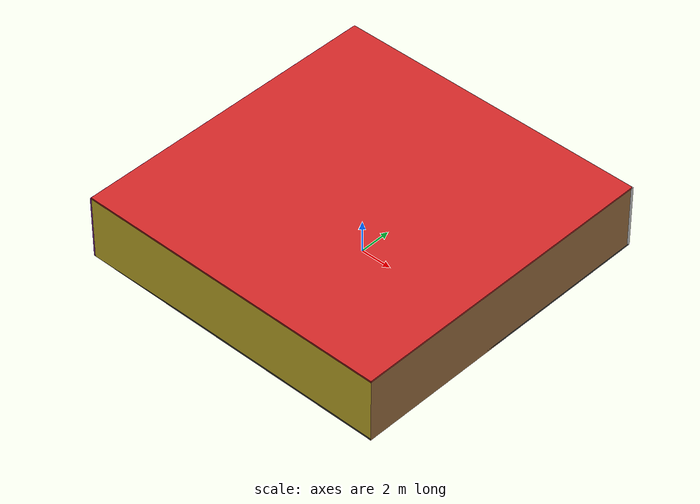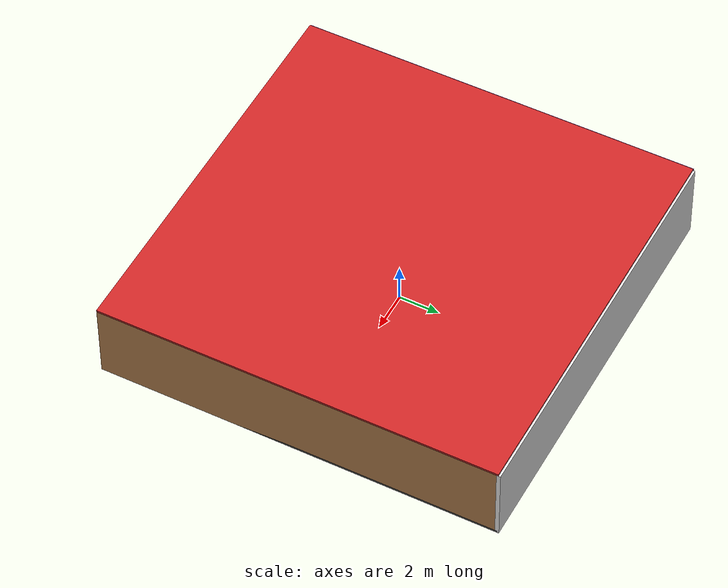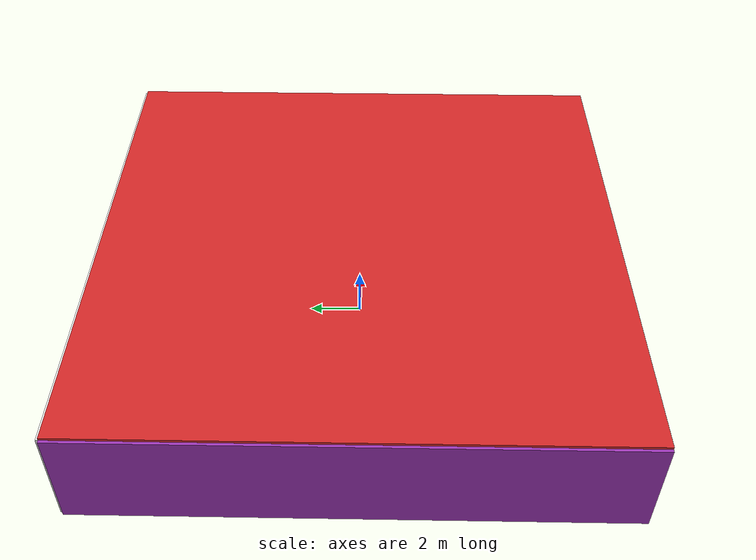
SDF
<sdf version="1.4">
 <world name="default">
  <physics type="ode">
   <max_step_size>0.001</max_step_size>
   <real_time_factor>1</real_time_factor>
   <real_time_update_rate>1000</real_time_update_rate>
   <gravity>0 0 -9.8</gravity>
  </physics>
  <scene><ambient>0.4 0.4 0.4 1</ambient><background>0.7 0.7 0.7 1</background><shadows>1</shadows></scene>
  <model name="Surrounding">
   <static>1</static>
   <link name="Ceiling">
    <collision name="Ceiling_Collision"><geometry><box><size>20 20 0.1</size></box></geometry></collision>
    <visual name="Ceiling_Visual">
     <geometry><box><size>20 20 0.1</size></box></geometry>
     <material>
      <script><uri>file://media/materials/scripts/gazebo.material</uri><name>Gazebo/RedGlow</name></script>
     </material>
    </visual>
    <pose>0 0 4.05 0 0 0</pose>
   </link>
   <link name="Wall_South">
    <collision name="Wall_South_Collision">
     <geometry><box><size>20 0 4</size></box></geometry>
     <pose>0 0 2 0 -0 0</pose>
    </collision>
    <visual name="Wall_South_Visual">
     <pose>0 0 2 0 -0 0</pose>
     <geometry><box><size>20 0 4</size></box></geometry>
     <material>
      <script><uri>file://media/materials/scripts/gazebo.material</uri><name>Gazebo/ZincYellow</name></script>
     </material>
    </visual>
    <velocity_decay><linear>0</linear><angular>0</angular></velocity_decay>
    <pose>0 -10 0 0 -0 0</pose>
   </link>
   <link name="Wall_East">
    <collision name="Wall_21_Collision">
     <geometry><box><size>20 0 4</size></box></geometry>
     <pose>0 0 2 0 -0 0</pose>
    </collision>
    <visual name="Wall_21_Visual">
     <pose>0 0 2 0 -0 0</pose>
     <geometry><box><size>20 0 4</size></box></geometry>
     <material>
      <script><uri>file://media/materials/scripts/gazebo.material</uri><name>Gazebo/WoodFloor</name></script>
     </material>
    </visual>
    <velocity_decay><linear>0</linear><angular>0</angular></velocity_decay>
    <pose>10 0 0 0 -0 1.5708</pose>
   </link>
   <link name="Wall_North">
    <collision name="Wall_22_Collision">
     <geometry><box><size>20 0.2 4</size></box></geometry>
     <pose>0 0 2 0 -0 0</pose>
    </collision>
    <visual name="Wall_22_Visual">
     <pose>0 0 2 0 -0 0</pose>
     <geometry><box><size>20 0.2 4</size></box></geometry>
     <material>
      <script><uri>file://media/materials/scripts/gazebo.material</uri><name>Gazebo/WhiteGlow</name></script>
     </material>
    </visual>
    <velocity_decay><linear>0</linear><angular>0</angular></velocity_decay>
    <pose>0 10 0 0 -0 0</pose>
   </link>
   <link name="Wall_West">
    <collision name="Wall_23_Collision">
     <geometry><box><size>20 0.2 4</size></box></geometry>
     <pose>0 0 2 0 -0 0</pose>
    </collision>
    <visual name="Wall_23_Visual">
     <pose>0 0 2 0 -0 0</pose>
     <geometry><box><size>20 0.2 4</size></box></geometry>
     <material>
      <script><uri>file://media/materials/scripts/gazebo.material</uri><name>Gazebo/PurpleGlow</name></script>
     </material>
    </visual>
    <velocity_decay><linear>0</linear><angular>0</angular></velocity_decay>
    <pose>-10 0 0 0 0 -1.5708</pose>
   </link>
   <link name="Ground_link">
    <collision name="collision">
     <pose>0 0 .05 0 -0 0</pose>
     <geometry><box><size>20 20 0.1</size></box></geometry>
    </collision>
    <visual name="visual">
     <pose>0 0 .05 0 -0 0</pose>
     <geometry><box><size>20 20 0.1</size></box></geometry>
     <material>
      <script><uri>file://media/materials/scripts/gazebo.material</uri><name>Gazebo/Road</name></script>
     </material>
    </visual>
   </link>
   <static>1</static>
  </model>
  <spherical_coordinates>
   <surface_model>EARTH_WGS84</surface_model>
   <latitude_deg>0</latitude_deg>
   <longitude_deg>0</longitude_deg>
   <elevation>0</elevation>
   <heading_deg>0</heading_deg>
  </spherical_coordinates>
  <light name="lightball_0" type="diffuse">
   <diffuse>0.8 0.8 0.8 1</diffuse>
   <specular>0.2 0.2 0.2 1</specular>
   <attenuation>
    <range>100</range>
    <constant>0.7</constant>
    <linear>0.01</linear>
    <quadratic>0.001</quadratic>
   </attenuation>
   <direction>-0.5 0.1 -0.9</direction>
   <pose>-7.90585096441 8.65147618971 1.37848093901 0 0 0</pose>
  </light>
  <light name="lightball_1" type="diffuse">
   <diffuse>0.8 0.8 0.8 1</diffuse>
   <specular>0.2 0.2 0.2 1</specular>
   <attenuation>
    <range>100</range>
    <constant>0.7</constant>
    <linear>0.01</linear>
    <quadratic>0.001</quadratic>
   </attenuation>
   <direction>-0.5 0.1 -0.9</direction>
   <pose>8.97357166357 1.64668940362 0.654771768467 0 0 0</pose>
  </light>
  <light name="lightball_2" type="diffuse">
   <diffuse>0.8 0.8 0.8 1</diffuse>
   <specular>0.2 0.2 0.2 1</specular>
   <attenuation>
    <range>100</range>
    <constant>0.7</constant>
    <linear>0.01</linear>
    <quadratic>0.001</quadratic>
   </attenuation>
   <direction>-0.5 0.1 -0.9</direction>
   <pose>-6.11548163205 9.99223249032 1.45183647194 0 0 0</pose>
  </light>
  <light name="lightball_3" type="diffuse">
   <diffuse>0.8 0.8 0.8 1</diffuse>
   <specular>0.2 0.2 0.2 1</specular>
   <attenuation>
    <range>100</range>
    <constant>0.7</constant>
    <linear>0.01</linear>
    <quadratic>0.001</quadratic>
   </attenuation>
   <direction>-0.5 0.1 -0.9</direction>
   <pose>2.15958948999 -9.81862924412 2.30618016247 0 0 0</pose>
  </light>
  <light name="lightball_4" type="diffuse">
   <diffuse>0.8 0.8 0.8 1</diffuse>
   <specular>0.2 0.2 0.2 1</specular>
   <attenuation>
    <range>100</range>
    <constant>0.7</constant>
    <linear>0.01</linear>
    <quadratic>0.001</quadratic>
   </attenuation>
   <direction>-0.5 0.1 -0.9</direction>
   <pose>-1.67238881367 -7.41929198056 2.70808522552 0 0 0</pose>
  </light>
  <light name="lightball_5" type="diffuse">
   <diffuse>0.8 0.8 0.8 1</diffuse>
   <specular>0.2 0.2 0.2 1</specular>
   <attenuation>
    <range>100</range>
    <constant>0.7</constant>
    <linear>0.01</linear>
    <quadratic>0.001</quadratic>
   </attenuation>
   <direction>-0.5 0.1 -0.9</direction>
   <pose>6.86334560205 -0.330938794366 2.098323639 0 0 0</pose>
  </light>
  <light name="lightball_6" type="diffuse">
   <diffuse>0.8 0.8 0.8 1</diffuse>
   <specular>0.2 0.2 0.2 1</specular>
   <attenuation>
    <range>100</range>
    <constant>0.7</constant>
    <linear>0.01</linear>
    <quadratic>0.001</quadratic>
   </attenuation>
   <direction>-0.5 0.1 -0.9</direction>
   <pose>-8.50287407568 0.46419760141 0.676180241373 0 0 0</pose>
  </light>
  <light name="lightball_7" type="diffuse">
   <diffuse>0.8 0.8 0.8 1</diffuse>
   <specular>0.2 0.2 0.2 1</specular>
   <attenuation>
    <range>100</range>
    <constant>0.7</constant>
    <linear>0.01</linear>
    <quadratic>0.001</quadratic>
   </attenuation>
   <direction>-0.5 0.1 -0.9</direction>
   <pose>8.26741753092 -3.32911727569 2.74891229041 0 0 0</pose>
  </light>
  <light name="lightball_8" type="diffuse">
   <diffuse>0.8 0.8 0.8 1</diffuse>
   <specular>0.2 0.2 0.2 1</specular>
   <attenuation>
    <range>100</range>
    <constant>0.7</constant>
    <linear>0.01</linear>
    <quadratic>0.001</quadratic>
   </attenuation>
   <direction>-0.5 0.1 -0.9</direction>
   <pose>-5.71088733465 1.54357555206 1.07464263348 0 0 0</pose>
  </light>
  <light name="lightball_9" type="diffuse">
   <diffuse>0.8 0.8 0.8 1</diffuse>
   <specular>0.2 0.2 0.2 1</specular>
   <attenuation>
    <range>100</range>
    <constant>0.7</constant>
    <linear>0.01</linear>
    <quadratic>0.001</quadratic>
   </attenuation>
   <direction>-0.5 0.1 -0.9</direction>
   <pose>2.99225512793 -4.78704522968 1.35708186294 0 0 0</pose>
  </light>
  <include><uri>model://cabinet</uri><pose>-4.98403975973 -1.2093511704 0 0 0 0.987621606706</pose></include>
  <include>
   <uri>model://construction_cone</uri>
   <pose>2.26410599314 1.05080406056 0 0 0 2.693942156</pose>
  </include>
  <include>
   <uri>model://textured_shapes</uri>
   <pose>0.810678743937 7.33690874436 0 0 0 0.149859228014</pose>
  </include>
  <include>
   <uri>model://robocup_3Dsim_goal</uri>
   <pose>4.02918765122 -6.73432544133 0 0 0 1.64659705394</pose>
  </include>
  <include><uri>model://cabinet</uri><pose>4.23141864278 -0.714065732168 0 0 0 2.87393659304</pose></include>
  <include>
   <uri>model://robocup_3Dsim_goal</uri>
   <pose>4.31276309435 2.12871716657 0 0 0 0.775185957934</pose>
  </include>
 </world>
</sdf>

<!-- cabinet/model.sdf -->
<sdf version="1.5">
  <model name="cabinet">
    <static>true</static>
    <link name="cabinet_bottom_plate">
      <inertial>
        <pose>0 0 -1 0 0 0</pose>
        <inertia>
          <ixx>2.050000</ixx>
          <ixy>0</ixy>
          <ixz>0</ixz>
          <iyy>2.050000</iyy>
          <iyz>0</iyz>
          <izz>2.050000</izz>
        </inertia>
        <mass>25.000000</mass>
      </inertial>
      <collision name="cabinet_bottom_plate_geom">
        <pose>0 0 0.010000 0 0 0</pose>
        <geometry>
          <box>
            <size>0.450000 0.450000 0.020000</size>
          </box>
        </geometry>
      </collision>
      <visual name="cabinet_bottom_plate_geom_visual">
        <pose>0 0 0.010000 0 0 0</pose>
        <geometry>
          <box>
            <size>0.450000 0.450000 0.020000</size>
          </box>
        </geometry>
        <material>
          <script>
            <uri>model://media/materials/scripts/gazebo.material</uri>
            <name>Gazebo/Wood</name>
          </script>
        </material>
      </visual>
      <collision name="cabinet_bottom_plate_geom_cabinet_back_plate">
        <pose>0.235000 0 0.510000 0 0 0</pose>
        <geometry>
          <box>
            <size>0.020000 0.450000 1.020000</size>
          </box>
        </geometry>
      </collision>
      <visual name="cabinet_bottom_plate_geom_cabinet_back_plate_visual">
        <pose>0.235000 0 0.510000 0 0 0</pose>
        <geometry>
          <box>
            <size>0.020000 0.450000 1.020000</size>
          </box>
        </geometry>
        <material>
          <script>
            <uri>model://media/materials/scripts/gazebo.material</uri>
            <name>Gazebo/Wood</name>
          </script>
        </material>
      </visual>
      <collision name="cabinet_bottom_plate_geom_cabinet_left_plate">
        <pose>0 0.235000 0.510000 0 0 0</pose>
        <geometry>
          <box>
            <size>0.450000 0.020000 1.020000</size>
          </box>
        </geometry>
      </collision>
      <visual name="cabinet_bottom_plate_geom_cabinet_left_plate_visual">
        <pose>0 0.235000 0.510000 0 0 0</pose>
        <geometry>
          <box>
            <size>0.450000 0.020000 1.020000</size>
          </box>
        </geometry>
        <material>
          <script>
            <uri>model://media/materials/scripts/gazebo.material</uri>
            <name>Gazebo/Wood</name>
          </script>
        </material>
      </visual>
      <collision name="cabinet_bottom_plate_geom_cabinet_middle_plate">
        <pose>0 0 0.510000 0 0 0</pose>
        <geometry>
          <box>
            <size>0.450000 0.450000 0.020000</size>
          </box>
        </geometry>
      </collision>
      <visual name="cabinet_bottom_plate_geom_cabinet_middle_plate_visual">
        <pose>0 0 0.510000 0 0 0</pose>
        <geometry>
          <box>
            <size>0.450000 0.450000 0.020000</size>
          </box>
        </geometry>
        <material>
          <script>
            <uri>model://media/materials/scripts/gazebo.material</uri>
            <name>Gazebo/Wood</name>
          </script>
        </material>
      </visual>
      <collision name="cabinet_bottom_plate_geom_cabinet_right_plate">
        <pose>0 -0.235000 0.510000 0 0 0</pose>
        <geometry>
          <box>
            <size>0.450000 0.020000 1.020000</size>
          </box>
        </geometry>
      </collision>
      <visual name="cabinet_bottom_plate_geom_cabinet_right_plate_visual">
        <pose>0 -0.235000 0.510000 0 0 0</pose>
        <geometry>
          <box>
            <size>0.450000 0.020000 1.020000</size>
          </box>
        </geometry>
        <material>
          <script>
            <uri>model://media/materials/scripts/gazebo.material</uri>
            <name>Gazebo/Wood</name>
          </script>
        </material>
      </visual>
      <collision name="cabinet_bottom_plate_geom_cabinet_top_plate">
        <pose>0 0 1.010000 0 0 0</pose>
        <geometry>
          <box>
            <size>0.450000 0.450000 0.020000</size>
          </box>
        </geometry>
      </collision>
      <visual name="cabinet_bottom_plate_geom_cabinet_top_plate_visual">
        <pose>0 0 1.010000 0 0 0</pose>
        <geometry>
          <box>
            <size>0.450000 0.450000 0.020000</size>
          </box>
        </geometry>
        <material>
          <script>
            <uri>model://media/materials/scripts/gazebo.material</uri>
            <name>Gazebo/Wood</name>
          </script>
        </material>
      </visual>
    </link>
  </model>
</sdf>

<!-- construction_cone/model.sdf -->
<sdf version="1.5">
  <model name="Construction Cone">
    <link name="link">
      <collision name="collision">
        <geometry>
          <mesh>
            <scale>10 10 10</scale>
            <uri>file://isr-testbed/construction_cone/meshes/construction_cone.dae</uri>
          </mesh>
        </geometry>
      </collision>
      <visual name="visual">
        <geometry>
          <mesh>
            <scale>10 10 10</scale>
            <uri>file://isr-testbed/construction_cone/meshes/construction_cone.dae</uri>
          </mesh>
        </geometry>
      </visual>
    </link>
  </model>
</sdf>

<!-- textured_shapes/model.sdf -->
<sdf version="1.6">
  <model name="textured_shapes">
    <pose>0 0 0.5 0 0 0</pose>
    <link name="box">
      <pose>0 -1.5 0 0 0 0</pose>
      <collision name="collision">
        <geometry>
          <box>
            <size>1 1 1</size>
          </box>
        </geometry>
      </collision>
      <visual name="visual">
        <geometry>
          <box>
            <size>1 1 1</size>
          </box>
        </geometry>
        <material>
          <script>
            <uri>model://../model_source/models/textured_shapes/materials/scripts</uri>
            <uri>model://../model_source/models/textured_shapes/materials/textures</uri>
            <name>TexturedShape/Squares</name>
          </script>
        </material>
      </visual>
    </link>
    <link name="sphere">
      <collision name="collision">
        <geometry>
          <sphere>
            <radius>0.5</radius>
          </sphere>
        </geometry>
      </collision>
      <visual name="visual">
        <geometry>
          <sphere>
            <radius>0.5</radius>
          </sphere>
        </geometry>
        <material>
          <script>
            <uri>model://../model_source/models/textured_shapes/materials/scripts</uri>
            <uri>model://../model_source/models/textured_shapes/materials/textures</uri>
            <name>TexturedShape/Squares</name>
          </script>
        </material>
      </visual>
    </link>
    <link name="cylinder">
      <pose>0 1.5 0 0 0 0</pose>
      <collision name="collision">
        <geometry>
          <cylinder>
            <radius>0.5</radius>
            <length>1</length>
          </cylinder>
        </geometry>
      </collision>
      <visual name="visual">
        <geometry>
          <cylinder>
            <radius>0.5</radius>
            <length>1</length>
          </cylinder>
        </geometry>
        <material>
          <script>
            <uri>model://../model_source/models/textured_shapes/materials/scripts</uri>
            <uri>model://../model_source/models/textured_shapes/materials/textures</uri>
            <name>TexturedShape/Squares</name>
          </script>
        </material>
      </visual>
    </link>
  </model>
</sdf>

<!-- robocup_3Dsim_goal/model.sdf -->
<sdf version="1.5">
  <model name="robocup_3d_goal">
    <static>true</static>
    <link name="left_post">
      <pose>0 1.05 0.45 0 0 0</pose>
      <collision name="collision">
        <geometry>
          <cylinder>
            <radius>0.05</radius>
            <length>0.9</length>
          </cylinder>
        </geometry>
      </collision>
      <visual name="visual">
        <geometry>
          <cylinder>
            <radius>0.05</radius>
            <length>0.9</length>
          </cylinder>
        </geometry>
        <material>
          <script>
            <uri>file://media/materials/scripts/gazebo.material</uri>
            <name>Gazebo/ZincYellow</name>
          </script>
        </material>
      </visual>
    </link>
    <link name="left_support_horiz_lower">
      <pose>0.30 1.05 0.01 0 0 0</pose>
      <collision name="collision">
        <geometry>
          <box>
            <size>0.50 0.02 0.02</size>
          </box>
        </geometry>
      </collision>
      <visual name="visual">
        <geometry>
          <box>
            <size>0.50 0.02 0.02</size>
          </box>
        </geometry>
        <material>
          <script>
            <uri>file://media/materials/scripts/gazebo.material</uri>
            <name>Gazebo/White</name>
          </script>
        </material>
      </visual>
    </link>
    <link name="left_support_horiz_upper">
      <pose>0.30 1.05 0.79 0 0 0</pose>
      <collision name="collision">
        <geometry>
          <box>
            <size>0.50 0.02 0.02</size>
          </box>
        </geometry>
      </collision>
      <visual name="visual">
        <geometry>
          <box>
            <size>0.50 0.02 0.02</size>
          </box>
        </geometry>
        <material>
          <script>
            <uri>file://media/materials/scripts/gazebo.material</uri>
            <name>Gazebo/White</name>
          </script>
        </material>
      </visual>
    </link>
    <link name="left_support_vertical">
      <pose>0.56 1.05 0.4 0 1.5708 0</pose>
      <collision name="collision">
        <geometry>
          <box>
            <size>0.80 0.02 0.02</size>
          </box>
        </geometry>
      </collision>
      <visual name="visual">
        <geometry>
          <box>
            <size>0.80 0.02 0.02</size>
          </box>
        </geometry>
        <material>
          <script>
            <uri>file://media/materials/scripts/gazebo.material</uri>
            <name>Gazebo/White</name>
          </script>
        </material>
      </visual>
    </link>
    <link name="right_support_horiz_lower">
      <pose>0.30 -1.05 0.01 0 0 0</pose>
      <collision name="collision">
        <geometry>
          <box>
            <size>0.50 0.02 0.02</size>
          </box>
        </geometry>
      </collision>
      <visual name="visual">
        <geometry>
          <box>
            <size>0.50 0.02 0.02</size>
          </box>
        </geometry>
        <material>
          <script>
            <uri>file://media/materials/scripts/gazebo.material</uri>
            <name>Gazebo/White</name>
          </script>
        </material>
      </visual>
    </link>
    <link name="right_support_horiz_upper">
      <pose>0.30 -1.05 0.79 0 0 0</pose>
      <collision name="collision">
        <geometry>
          <box>
            <size>0.50 0.02 0.02</size>
          </box>
        </geometry>
      </collision>
      <visual name="visual">
        <geometry>
          <box>
            <size>0.50 0.02 0.02</size>
          </box>
        </geometry>
        <material>
          <script>
            <uri>file://media/materials/scripts/gazebo.material</uri>
            <name>Gazebo/White</name>
          </script>
        </material>
      </visual>
    </link>
    <link name="right_support_vertical">
      <pose>0.56 -1.05 0.4 0 1.5708 0</pose>
      <collision name="collision">
        <geometry>
          <box>
            <size>0.80 0.02 0.02</size>
          </box>
        </geometry>
      </collision>
      <visual name="visual">
        <geometry>
          <box>
            <size>0.80 0.02 0.02</size>
          </box>
        </geometry>
        <material>
          <script>
            <uri>file://media/materials/scripts/gazebo.material</uri>
            <name>Gazebo/White</name>
          </script>
        </material>
      </visual>
    </link>
    <link name="center_support_horiz_lower">
      <pose>0.56 0 0.01 0 1.5708 0</pose>
      <collision name="collision">
        <geometry>
          <box>
            <size>0.02 2.08 0.02</size>
          </box>
        </geometry>
      </collision>
      <visual name="visual">
        <geometry>
          <box>
            <size>0.02 2.08 0.02</size>
          </box>
        </geometry>
        <material>
          <script>
            <uri>file://media/materials/scripts/gazebo.material</uri>
            <name>Gazebo/White</name>
          </script>
        </material>
      </visual>
    </link>
    <link name="center_support_horiz_upper">
      <pose>0.56 0 0.79 0 1.5708 0</pose>
      <collision name="collision">
        <geometry>
          <box>
            <size>0.02 2.08 0.02</size>
          </box>
        </geometry>
      </collision>
      <visual name="visual">
        <geometry>
          <box>
            <size>0.02 2.08 0.02</size>
          </box>
        </geometry>
        <material>
          <script>
            <uri>file://media/materials/scripts/gazebo.material</uri>
            <name>Gazebo/White</name>
          </script>
        </material>
      </visual>
    </link>
    <link name="right_post">
      <pose>0 -1.05 0.45 0 0 0</pose>
      <collision name="collision">
        <geometry>
          <cylinder>
            <radius>0.05</radius>
            <length>0.9</length>
          </cylinder>
        </geometry>
      </collision>
      <visual name="visual">
        <geometry>
          <cylinder>
            <radius>0.05</radius>
            <length>0.9</length>
          </cylinder>
        </geometry>
        <material>
          <script>
            <uri>file://media/materials/scripts/gazebo.material</uri>
            <name>Gazebo/ZincYellow</name>
          </script>
        </material>
      </visual>
    </link>
    <link name="crossbar">
      <pose>0 0 0.85 1.57 1.57 0</pose>
      <collision name="collision">
        <geometry>
          <cylinder>
            <radius>0.05</radius>
            <length>2.0</length>
          </cylinder>
        </geometry>
      </collision>
      <visual name="visual">
        <geometry>
          <cylinder>
            <radius>0.05</radius>
            <length>2.0</length>
          </cylinder>
        </geometry>
        <material>
          <script>
            <uri>file://media/materials/scripts/gazebo.material</uri>
            <name>Gazebo/ZincYellow</name>
          </script>
        </material>
      </visual>
    </link>
    <link name="center_net">
      <pose>0.56 0 0.40 0 0 0</pose>
      <collision name="collision">
        <geometry>
          <box>
            <size>0.01 2.1 0.80</size>
          </box>
        </geometry>
      </collision>
      <visual name="visual">
        <geometry>
          <box>
            <size>0.01 2.1 0.80</size>
          </box>
        </geometry>
        <material>
          <script>
            <uri>model://../model_source/models/robocup09_spl_field/materials/scripts/</uri>
            <uri>model://../model_source/models/robocup09_spl_field/materials/textures/</uri>
            <name>RoboCup/Net</name>
          </script>
        </material>
      </visual>
    </link>
    <link name="left_net">
      <pose>0.30 1.05 0.40 0 0 0</pose>
      <collision name="collision">
        <geometry>
          <box>
            <size>0.50 0.01 0.76</size>
          </box>
        </geometry>
      </collision>
      <visual name="visual">
        <geometry>
          <box>
            <size>0.50 0.01 0.76</size>
          </box>
        </geometry>
        <material>
          <script>
            <uri>model://../model_source/models/robocup09_spl_field/materials/scripts/</uri>
            <uri>model://../model_source/models/robocup09_spl_field/materials/textures/</uri>
            <name>RoboCup/Net</name>
          </script>
        </material>
      </visual>
    </link>
    <link name="right_net">
      <pose>0.30 -1.05 0.40 0 0 0</pose>
      <collision name="collision">
        <geometry>
          <box>
            <size>0.50 0.01 0.76</size>
          </box>
        </geometry>
      </collision>
      <visual name="visual">
        <geometry>
          <box>
            <size>0.50 0.01 0.76</size>
          </box>
        </geometry>
        <material>
          <script>
            <uri>model://../model_source/models/robocup09_spl_field/materials/scripts/</uri>
            <uri>model://../model_source/models/robocup09_spl_field/materials/textures/</uri>
            <name>RoboCup/Net</name>
          </script>
        </material>
      </visual>
    </link>
  </model>
</sdf>
